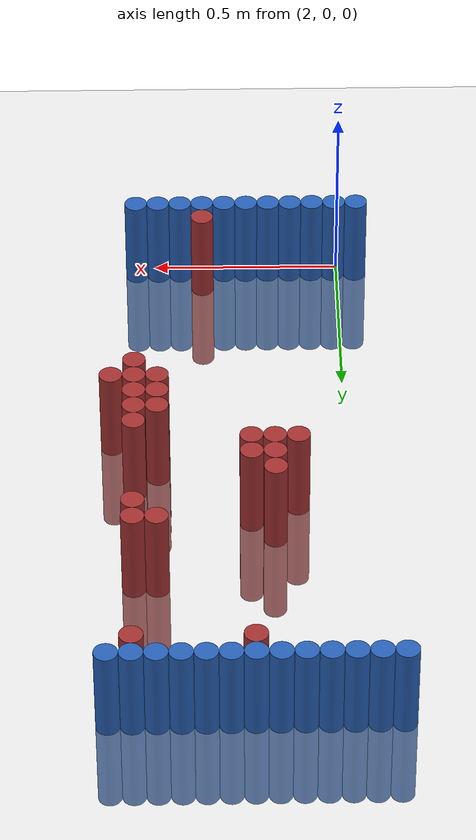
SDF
<sdf version="1.6">
 <world name="default">
  <model name="ground_plane">
   <static>1</static>
   <link name="link">
    <collision name="collision">
     <geometry><plane><normal>0 0 1</normal><size>100 100</size></plane></geometry>
     <surface><friction><ode><mu>100</mu><mu2>50</mu2></ode></friction></surface>
    </collision>
    <visual name="visual">
     <cast_shadows>0</cast_shadows>
     <geometry><plane><normal>0 0 1</normal><size>100 100</size></plane></geometry>
     <material>
      <script><uri>file://media/materials/scripts/gazebo.material</uri><name>Gazebo/Grey</name></script>
     </material>
    </visual>
   </link>
  </model>
  <model name="unit_cylinder_90">
   <static>1</static>
   <pose>1.890000 1.770000 0.000000 0.000000 0.000000 0.000000</pose>
   <link name="link">
    <inertial>
     <mass>1</mass>
     <inertia><ixx>0.145833</ixx><ixy>0</ixy><ixz>0</ixz><iyy>0.145833</iyy><iyz>0</iyz><izz>0.125</izz></inertia>
    </inertial>
    <collision name="collision">
     <geometry><cylinder><radius>0.030000</radius><length>0.5</length></cylinder></geometry>
    </collision>
    <visual name="visual">
     <geometry><cylinder><radius>0.030000</radius><length>0.5</length></cylinder></geometry>
     <material>
      <ambient>0.152000 0.379000 0.720000 1</ambient>
      <diffuse>0.152000 0.379000 0.720000 1</diffuse>
     </material>
     <material>
      <script><name>Gazebo/Grey</name><uri>file://media/materials/scripts/gazebo.material</uri></script>
     </material>
    </visual>
   </link>
  </model>
  <model name="unit_cylinder_91">
   <static>1</static>
   <pose>1.950000 0.030000 0.000000 0.000000 0.000000 0.000000</pose>
   <link name="link">
    <inertial>
     <mass>1</mass>
     <inertia><ixx>0.145833</ixx><ixy>0</ixy><ixz>0</ixz><iyy>0.145833</iyy><iyz>0</iyz><izz>0.125</izz></inertia>
    </inertial>
    <collision name="collision">
     <geometry><cylinder><radius>0.030000</radius><length>0.5</length></cylinder></geometry>
    </collision>
    <visual name="visual">
     <geometry><cylinder><radius>0.030000</radius><length>0.5</length></cylinder></geometry>
     <material>
      <ambient>0.152000 0.379000 0.720000 1</ambient>
      <diffuse>0.152000 0.379000 0.720000 1</diffuse>
     </material>
     <material>
      <script><name>Gazebo/Grey</name><uri>file://media/materials/scripts/gazebo.material</uri></script>
     </material>
    </visual>
   </link>
  </model>
  <model name="unit_cylinder_92">
   <static>1</static>
   <pose>1.950000 1.770000 0.000000 0.000000 0.000000 0.000000</pose>
   <link name="link">
    <inertial>
     <mass>1</mass>
     <inertia><ixx>0.145833</ixx><ixy>0</ixy><ixz>0</ixz><iyy>0.145833</iyy><iyz>0</iyz><izz>0.125</izz></inertia>
    </inertial>
    <collision name="collision">
     <geometry><cylinder><radius>0.030000</radius><length>0.5</length></cylinder></geometry>
    </collision>
    <visual name="visual">
     <geometry><cylinder><radius>0.030000</radius><length>0.5</length></cylinder></geometry>
     <material>
      <ambient>0.152000 0.379000 0.720000 1</ambient>
      <diffuse>0.152000 0.379000 0.720000 1</diffuse>
     </material>
     <material>
      <script><name>Gazebo/Grey</name><uri>file://media/materials/scripts/gazebo.material</uri></script>
     </material>
    </visual>
   </link>
  </model>
  <model name="unit_cylinder_93">
   <static>1</static>
   <pose>2.010000 0.030000 0.000000 0.000000 0.000000 0.000000</pose>
   <link name="link">
    <inertial>
     <mass>1</mass>
     <inertia><ixx>0.145833</ixx><ixy>0</ixy><ixz>0</ixz><iyy>0.145833</iyy><iyz>0</iyz><izz>0.125</izz></inertia>
    </inertial>
    <collision name="collision">
     <geometry><cylinder><radius>0.030000</radius><length>0.5</length></cylinder></geometry>
    </collision>
    <visual name="visual">
     <geometry><cylinder><radius>0.030000</radius><length>0.5</length></cylinder></geometry>
     <material>
      <ambient>0.152000 0.379000 0.720000 1</ambient>
      <diffuse>0.152000 0.379000 0.720000 1</diffuse>
     </material>
     <material>
      <script><name>Gazebo/Grey</name><uri>file://media/materials/scripts/gazebo.material</uri></script>
     </material>
    </visual>
   </link>
  </model>
  <model name="unit_cylinder_94">
   <static>1</static>
   <pose>2.010000 1.770000 0.000000 0.000000 0.000000 0.000000</pose>
   <link name="link">
    <inertial>
     <mass>1</mass>
     <inertia><ixx>0.145833</ixx><ixy>0</ixy><ixz>0</ixz><iyy>0.145833</iyy><iyz>0</iyz><izz>0.125</izz></inertia>
    </inertial>
    <collision name="collision">
     <geometry><cylinder><radius>0.030000</radius><length>0.5</length></cylinder></geometry>
    </collision>
    <visual name="visual">
     <geometry><cylinder><radius>0.030000</radius><length>0.5</length></cylinder></geometry>
     <material>
      <ambient>0.152000 0.379000 0.720000 1</ambient>
      <diffuse>0.152000 0.379000 0.720000 1</diffuse>
     </material>
     <material>
      <script><name>Gazebo/Grey</name><uri>file://media/materials/scripts/gazebo.material</uri></script>
     </material>
    </visual>
   </link>
  </model>
  <model name="unit_cylinder_95">
   <static>1</static>
   <pose>2.070000 1.770000 0.000000 0.000000 0.000000 0.000000</pose>
   <link name="link">
    <inertial>
     <mass>1</mass>
     <inertia><ixx>0.145833</ixx><ixy>0</ixy><ixz>0</ixz><iyy>0.145833</iyy><iyz>0</iyz><izz>0.125</izz></inertia>
    </inertial>
    <collision name="collision">
     <geometry><cylinder><radius>0.030000</radius><length>0.5</length></cylinder></geometry>
    </collision>
    <visual name="visual">
     <geometry><cylinder><radius>0.030000</radius><length>0.5</length></cylinder></geometry>
     <material>
      <ambient>0.152000 0.379000 0.720000 1</ambient>
      <diffuse>0.152000 0.379000 0.720000 1</diffuse>
     </material>
     <material>
      <script><name>Gazebo/Grey</name><uri>file://media/materials/scripts/gazebo.material</uri></script>
     </material>
    </visual>
   </link>
  </model>
  <model name="unit_cylinder_96">
   <static>1</static>
   <pose>2.130000 1.770000 0.000000 0.000000 0.000000 0.000000</pose>
   <link name="link">
    <inertial>
     <mass>1</mass>
     <inertia><ixx>0.145833</ixx><ixy>0</ixy><ixz>0</ixz><iyy>0.145833</iyy><iyz>0</iyz><izz>0.125</izz></inertia>
    </inertial>
    <collision name="collision">
     <geometry><cylinder><radius>0.030000</radius><length>0.5</length></cylinder></geometry>
    </collision>
    <visual name="visual">
     <geometry><cylinder><radius>0.030000</radius><length>0.5</length></cylinder></geometry>
     <material>
      <ambient>0.152000 0.379000 0.720000 1</ambient>
      <diffuse>0.152000 0.379000 0.720000 1</diffuse>
     </material>
     <material>
      <script><name>Gazebo/Grey</name><uri>file://media/materials/scripts/gazebo.material</uri></script>
     </material>
    </visual>
   </link>
  </model>
  <model name="unit_cylinder_97">
   <static>1</static>
   <pose>2.190000 1.770000 0.000000 0.000000 0.000000 0.000000</pose>
   <link name="link">
    <inertial>
     <mass>1</mass>
     <inertia><ixx>0.145833</ixx><ixy>0</ixy><ixz>0</ixz><iyy>0.145833</iyy><iyz>0</iyz><izz>0.125</izz></inertia>
    </inertial>
    <collision name="collision">
     <geometry><cylinder><radius>0.030000</radius><length>0.5</length></cylinder></geometry>
    </collision>
    <visual name="visual">
     <geometry><cylinder><radius>0.030000</radius><length>0.5</length></cylinder></geometry>
     <material>
      <ambient>0.152000 0.379000 0.720000 1</ambient>
      <diffuse>0.152000 0.379000 0.720000 1</diffuse>
     </material>
     <material>
      <script><name>Gazebo/Grey</name><uri>file://media/materials/scripts/gazebo.material</uri></script>
     </material>
    </visual>
   </link>
  </model>
  <model name="unit_cylinder_98">
   <static>1</static>
   <pose>2.250000 1.770000 0.000000 0.000000 0.000000 0.000000</pose>
   <link name="link">
    <inertial>
     <mass>1</mass>
     <inertia><ixx>0.145833</ixx><ixy>0</ixy><ixz>0</ixz><iyy>0.145833</iyy><iyz>0</iyz><izz>0.125</izz></inertia>
    </inertial>
    <collision name="collision">
     <geometry><cylinder><radius>0.030000</radius><length>0.5</length></cylinder></geometry>
    </collision>
    <visual name="visual">
     <geometry><cylinder><radius>0.030000</radius><length>0.5</length></cylinder></geometry>
     <material>
      <ambient>0.152000 0.379000 0.720000 1</ambient>
      <diffuse>0.152000 0.379000 0.720000 1</diffuse>
     </material>
     <material>
      <script><name>Gazebo/Grey</name><uri>file://media/materials/scripts/gazebo.material</uri></script>
     </material>
    </visual>
   </link>
  </model>
  <model name="unit_cylinder_99">
   <static>1</static>
   <pose>2.310000 1.770000 0.000000 0.000000 0.000000 0.000000</pose>
   <link name="link">
    <inertial>
     <mass>1</mass>
     <inertia><ixx>0.145833</ixx><ixy>0</ixy><ixz>0</ixz><iyy>0.145833</iyy><iyz>0</iyz><izz>0.125</izz></inertia>
    </inertial>
    <collision name="collision">
     <geometry><cylinder><radius>0.030000</radius><length>0.5</length></cylinder></geometry>
    </collision>
    <visual name="visual">
     <geometry><cylinder><radius>0.030000</radius><length>0.5</length></cylinder></geometry>
     <material>
      <ambient>0.152000 0.379000 0.720000 1</ambient>
      <diffuse>0.152000 0.379000 0.720000 1</diffuse>
     </material>
     <material>
      <script><name>Gazebo/Grey</name><uri>file://media/materials/scripts/gazebo.material</uri></script>
     </material>
    </visual>
   </link>
  </model>
  <model name="unit_cylinder_100">
   <static>1</static>
   <pose>2.370000 1.770000 0.000000 0.000000 0.000000 0.000000</pose>
   <link name="link">
    <inertial>
     <mass>1</mass>
     <inertia><ixx>0.145833</ixx><ixy>0</ixy><ixz>0</ixz><iyy>0.145833</iyy><iyz>0</iyz><izz>0.125</izz></inertia>
    </inertial>
    <collision name="collision">
     <geometry><cylinder><radius>0.030000</radius><length>0.5</length></cylinder></geometry>
    </collision>
    <visual name="visual">
     <geometry><cylinder><radius>0.030000</radius><length>0.5</length></cylinder></geometry>
     <material>
      <ambient>0.152000 0.379000 0.720000 1</ambient>
      <diffuse>0.152000 0.379000 0.720000 1</diffuse>
     </material>
     <material>
      <script><name>Gazebo/Grey</name><uri>file://media/materials/scripts/gazebo.material</uri></script>
     </material>
    </visual>
   </link>
  </model>
  <model name="unit_cylinder_101">
   <static>1</static>
   <pose>2.430000 1.770000 0.000000 0.000000 0.000000 0.000000</pose>
   <link name="link">
    <inertial>
     <mass>1</mass>
     <inertia><ixx>0.145833</ixx><ixy>0</ixy><ixz>0</ixz><iyy>0.145833</iyy><iyz>0</iyz><izz>0.125</izz></inertia>
    </inertial>
    <collision name="collision">
     <geometry><cylinder><radius>0.030000</radius><length>0.5</length></cylinder></geometry>
    </collision>
    <visual name="visual">
     <geometry><cylinder><radius>0.030000</radius><length>0.5</length></cylinder></geometry>
     <material>
      <ambient>0.152000 0.379000 0.720000 1</ambient>
      <diffuse>0.152000 0.379000 0.720000 1</diffuse>
     </material>
     <material>
      <script><name>Gazebo/Grey</name><uri>file://media/materials/scripts/gazebo.material</uri></script>
     </material>
    </visual>
   </link>
  </model>
  <model name="unit_cylinder_102">
   <static>1</static>
   <pose>2.490000 1.770000 0.000000 0.000000 0.000000 0.000000</pose>
   <link name="link">
    <inertial>
     <mass>1</mass>
     <inertia><ixx>0.145833</ixx><ixy>0</ixy><ixz>0</ixz><iyy>0.145833</iyy><iyz>0</iyz><izz>0.125</izz></inertia>
    </inertial>
    <collision name="collision">
     <geometry><cylinder><radius>0.030000</radius><length>0.5</length></cylinder></geometry>
    </collision>
    <visual name="visual">
     <geometry><cylinder><radius>0.030000</radius><length>0.5</length></cylinder></geometry>
     <material>
      <ambient>0.152000 0.379000 0.720000 1</ambient>
      <diffuse>0.152000 0.379000 0.720000 1</diffuse>
     </material>
     <material>
      <script><name>Gazebo/Grey</name><uri>file://media/materials/scripts/gazebo.material</uri></script>
     </material>
    </visual>
   </link>
  </model>
  <model name="unit_cylinder_103">
   <static>1</static>
   <pose>2.550000 1.770000 0.000000 0.000000 0.000000 0.000000</pose>
   <link name="link">
    <inertial>
     <mass>1</mass>
     <inertia><ixx>0.145833</ixx><ixy>0</ixy><ixz>0</ixz><iyy>0.145833</iyy><iyz>0</iyz><izz>0.125</izz></inertia>
    </inertial>
    <collision name="collision">
     <geometry><cylinder><radius>0.030000</radius><length>0.5</length></cylinder></geometry>
    </collision>
    <visual name="visual">
     <geometry><cylinder><radius>0.030000</radius><length>0.5</length></cylinder></geometry>
     <material>
      <ambient>0.152000 0.379000 0.720000 1</ambient>
      <diffuse>0.152000 0.379000 0.720000 1</diffuse>
     </material>
     <material>
      <script><name>Gazebo/Grey</name><uri>file://media/materials/scripts/gazebo.material</uri></script>
     </material>
    </visual>
   </link>
  </model>
  <model name="unit_cylinder_104">
   <static>1</static>
   <pose>2.610000 1.770000 0.000000 0.000000 0.000000 0.000000</pose>
   <link name="link">
    <inertial>
     <mass>1</mass>
     <inertia><ixx>0.145833</ixx><ixy>0</ixy><ixz>0</ixz><iyy>0.145833</iyy><iyz>0</iyz><izz>0.125</izz></inertia>
    </inertial>
    <collision name="collision">
     <geometry><cylinder><radius>0.030000</radius><length>0.5</length></cylinder></geometry>
    </collision>
    <visual name="visual">
     <geometry><cylinder><radius>0.030000</radius><length>0.5</length></cylinder></geometry>
     <material>
      <ambient>0.152000 0.379000 0.720000 1</ambient>
      <diffuse>0.152000 0.379000 0.720000 1</diffuse>
     </material>
     <material>
      <script><name>Gazebo/Grey</name><uri>file://media/materials/scripts/gazebo.material</uri></script>
     </material>
    </visual>
   </link>
  </model>
  <model name="unit_cylinder_125">
   <static>1</static>
   <pose>2.250000 1.710000 0.000000 0.000000 0.000000 0.000000</pose>
   <link name="link">
    <inertial>
     <mass>1</mass>
     <inertia><ixx>0.145833</ixx><ixy>0</ixy><ixz>0</ixz><iyy>0.145833</iyy><iyz>0</iyz><izz>0.125</izz></inertia>
    </inertial>
    <collision name="collision">
     <geometry><cylinder><radius>0.030000</radius><length>0.5</length></cylinder></geometry>
    </collision>
    <visual name="visual">
     <geometry><cylinder><radius>0.030000</radius><length>0.5</length></cylinder></geometry>
     <material>
      <ambient>0.648000 0.192000 0.192000 1</ambient>
      <diffuse>0.648000 0.192000 0.192000 1</diffuse>
     </material>
     <material>
      <script><name>Gazebo/Grey</name><uri>file://media/materials/scripts/gazebo.material</uri></script>
     </material>
    </visual>
   </link>
  </model>
  <model name="unit_cylinder_126">
   <static>1</static>
   <pose>2.550000 1.710000 0.000000 0.000000 0.000000 0.000000</pose>
   <link name="link">
    <inertial>
     <mass>1</mass>
     <inertia><ixx>0.145833</ixx><ixy>0</ixy><ixz>0</ixz><iyy>0.145833</iyy><iyz>0</iyz><izz>0.125</izz></inertia>
    </inertial>
    <collision name="collision">
     <geometry><cylinder><radius>0.030000</radius><length>0.5</length></cylinder></geometry>
    </collision>
    <visual name="visual">
     <geometry><cylinder><radius>0.030000</radius><length>0.5</length></cylinder></geometry>
     <material>
      <ambient>0.648000 0.192000 0.192000 1</ambient>
      <diffuse>0.648000 0.192000 0.192000 1</diffuse>
     </material>
     <material>
      <script><name>Gazebo/Grey</name><uri>file://media/materials/scripts/gazebo.material</uri></script>
     </material>
    </visual>
   </link>
  </model>
  <model name="unit_cylinder_141">
   <static>1</static>
   <pose>2.490000 1.290000 0.000000 0.000000 0.000000 0.000000</pose>
   <link name="link">
    <inertial>
     <mass>1</mass>
     <inertia><ixx>0.145833</ixx><ixy>0</ixy><ixz>0</ixz><iyy>0.145833</iyy><iyz>0</iyz><izz>0.125</izz></inertia>
    </inertial>
    <collision name="collision">
     <geometry><cylinder><radius>0.030000</radius><length>0.5</length></cylinder></geometry>
    </collision>
    <visual name="visual">
     <geometry><cylinder><radius>0.030000</radius><length>0.5</length></cylinder></geometry>
     <material>
      <ambient>0.648000 0.192000 0.192000 1</ambient>
      <diffuse>0.648000 0.192000 0.192000 1</diffuse>
     </material>
     <material>
      <script><name>Gazebo/Grey</name><uri>file://media/materials/scripts/gazebo.material</uri></script>
     </material>
    </visual>
   </link>
  </model>
  <model name="unit_cylinder_142">
   <static>1</static>
   <pose>2.550000 1.290000 0.000000 0.000000 0.000000 0.000000</pose>
   <link name="link">
    <inertial>
     <mass>1</mass>
     <inertia><ixx>0.145833</ixx><ixy>0</ixy><ixz>0</ixz><iyy>0.145833</iyy><iyz>0</iyz><izz>0.125</izz></inertia>
    </inertial>
    <collision name="collision">
     <geometry><cylinder><radius>0.030000</radius><length>0.5</length></cylinder></geometry>
    </collision>
    <visual name="visual">
     <geometry><cylinder><radius>0.030000</radius><length>0.5</length></cylinder></geometry>
     <material>
      <ambient>0.648000 0.192000 0.192000 1</ambient>
      <diffuse>0.648000 0.192000 0.192000 1</diffuse>
     </material>
     <material>
      <script><name>Gazebo/Grey</name><uri>file://media/materials/scripts/gazebo.material</uri></script>
     </material>
    </visual>
   </link>
  </model>
  <model name="unit_cylinder_145">
   <static>1</static>
   <pose>2.550000 1.230000 0.000000 0.000000 0.000000 0.000000</pose>
   <link name="link">
    <inertial>
     <mass>1</mass>
     <inertia><ixx>0.145833</ixx><ixy>0</ixy><ixz>0</ixz><iyy>0.145833</iyy><iyz>0</iyz><izz>0.125</izz></inertia>
    </inertial>
    <collision name="collision">
     <geometry><cylinder><radius>0.030000</radius><length>0.5</length></cylinder></geometry>
    </collision>
    <visual name="visual">
     <geometry><cylinder><radius>0.030000</radius><length>0.5</length></cylinder></geometry>
     <material>
      <ambient>0.648000 0.192000 0.192000 1</ambient>
      <diffuse>0.648000 0.192000 0.192000 1</diffuse>
     </material>
     <material>
      <script><name>Gazebo/Grey</name><uri>file://media/materials/scripts/gazebo.material</uri></script>
     </material>
    </visual>
   </link>
  </model>
  <model name="unit_cylinder_151">
   <static>1</static>
   <pose>2.190000 1.110000 0.000000 0.000000 0.000000 0.000000</pose>
   <link name="link">
    <inertial>
     <mass>1</mass>
     <inertia><ixx>0.145833</ixx><ixy>0</ixy><ixz>0</ixz><iyy>0.145833</iyy><iyz>0</iyz><izz>0.125</izz></inertia>
    </inertial>
    <collision name="collision">
     <geometry><cylinder><radius>0.030000</radius><length>0.5</length></cylinder></geometry>
    </collision>
    <visual name="visual">
     <geometry><cylinder><radius>0.030000</radius><length>0.5</length></cylinder></geometry>
     <material>
      <ambient>0.648000 0.192000 0.192000 1</ambient>
      <diffuse>0.648000 0.192000 0.192000 1</diffuse>
     </material>
     <material>
      <script><name>Gazebo/Grey</name><uri>file://media/materials/scripts/gazebo.material</uri></script>
     </material>
    </visual>
   </link>
  </model>
  <model name="unit_cylinder_154">
   <static>1</static>
   <pose>2.190000 1.050000 0.000000 0.000000 0.000000 0.000000</pose>
   <link name="link">
    <inertial>
     <mass>1</mass>
     <inertia><ixx>0.145833</ixx><ixy>0</ixy><ixz>0</ixz><iyy>0.145833</iyy><iyz>0</iyz><izz>0.125</izz></inertia>
    </inertial>
    <collision name="collision">
     <geometry><cylinder><radius>0.030000</radius><length>0.5</length></cylinder></geometry>
    </collision>
    <visual name="visual">
     <geometry><cylinder><radius>0.030000</radius><length>0.5</length></cylinder></geometry>
     <material>
      <ambient>0.648000 0.192000 0.192000 1</ambient>
      <diffuse>0.648000 0.192000 0.192000 1</diffuse>
     </material>
     <material>
      <script><name>Gazebo/Grey</name><uri>file://media/materials/scripts/gazebo.material</uri></script>
     </material>
    </visual>
   </link>
  </model>
  <model name="unit_cylinder_155">
   <static>1</static>
   <pose>2.250000 1.050000 0.000000 0.000000 0.000000 0.000000</pose>
   <link name="link">
    <inertial>
     <mass>1</mass>
     <inertia><ixx>0.145833</ixx><ixy>0</ixy><ixz>0</ixz><iyy>0.145833</iyy><iyz>0</iyz><izz>0.125</izz></inertia>
    </inertial>
    <collision name="collision">
     <geometry><cylinder><radius>0.030000</radius><length>0.5</length></cylinder></geometry>
    </collision>
    <visual name="visual">
     <geometry><cylinder><radius>0.030000</radius><length>0.5</length></cylinder></geometry>
     <material>
      <ambient>0.648000 0.192000 0.192000 1</ambient>
      <diffuse>0.648000 0.192000 0.192000 1</diffuse>
     </material>
     <material>
      <script><name>Gazebo/Grey</name><uri>file://media/materials/scripts/gazebo.material</uri></script>
     </material>
    </visual>
   </link>
  </model>
  <model name="unit_cylinder_156">
   <static>1</static>
   <pose>2.130000 0.990000 0.000000 0.000000 0.000000 0.000000</pose>
   <link name="link">
    <inertial>
     <mass>1</mass>
     <inertia><ixx>0.145833</ixx><ixy>0</ixy><ixz>0</ixz><iyy>0.145833</iyy><iyz>0</iyz><izz>0.125</izz></inertia>
    </inertial>
    <collision name="collision">
     <geometry><cylinder><radius>0.030000</radius><length>0.5</length></cylinder></geometry>
    </collision>
    <visual name="visual">
     <geometry><cylinder><radius>0.030000</radius><length>0.5</length></cylinder></geometry>
     <material>
      <ambient>0.648000 0.192000 0.192000 1</ambient>
      <diffuse>0.648000 0.192000 0.192000 1</diffuse>
     </material>
     <material>
      <script><name>Gazebo/Grey</name><uri>file://media/materials/scripts/gazebo.material</uri></script>
     </material>
    </visual>
   </link>
  </model>
  <model name="unit_cylinder_157">
   <static>1</static>
   <pose>2.190000 0.990000 0.000000 0.000000 0.000000 0.000000</pose>
   <link name="link">
    <inertial>
     <mass>1</mass>
     <inertia><ixx>0.145833</ixx><ixy>0</ixy><ixz>0</ixz><iyy>0.145833</iyy><iyz>0</iyz><izz>0.125</izz></inertia>
    </inertial>
    <collision name="collision">
     <geometry><cylinder><radius>0.030000</radius><length>0.5</length></cylinder></geometry>
    </collision>
    <visual name="visual">
     <geometry><cylinder><radius>0.030000</radius><length>0.5</length></cylinder></geometry>
     <material>
      <ambient>0.648000 0.192000 0.192000 1</ambient>
      <diffuse>0.648000 0.192000 0.192000 1</diffuse>
     </material>
     <material>
      <script><name>Gazebo/Grey</name><uri>file://media/materials/scripts/gazebo.material</uri></script>
     </material>
    </visual>
   </link>
  </model>
  <model name="unit_cylinder_158">
   <static>1</static>
   <pose>2.250000 0.990000 0.000000 0.000000 0.000000 0.000000</pose>
   <link name="link">
    <inertial>
     <mass>1</mass>
     <inertia><ixx>0.145833</ixx><ixy>0</ixy><ixz>0</ixz><iyy>0.145833</iyy><iyz>0</iyz><izz>0.125</izz></inertia>
    </inertial>
    <collision name="collision">
     <geometry><cylinder><radius>0.030000</radius><length>0.5</length></cylinder></geometry>
    </collision>
    <visual name="visual">
     <geometry><cylinder><radius>0.030000</radius><length>0.5</length></cylinder></geometry>
     <material>
      <ambient>0.648000 0.192000 0.192000 1</ambient>
      <diffuse>0.648000 0.192000 0.192000 1</diffuse>
     </material>
     <material>
      <script><name>Gazebo/Grey</name><uri>file://media/materials/scripts/gazebo.material</uri></script>
     </material>
    </visual>
   </link>
  </model>
  <model name="unit_cylinder_159">
   <static>1</static>
   <pose>2.550000 0.930000 0.000000 0.000000 0.000000 0.000000</pose>
   <link name="link">
    <inertial>
     <mass>1</mass>
     <inertia><ixx>0.145833</ixx><ixy>0</ixy><ixz>0</ixz><iyy>0.145833</iyy><iyz>0</iyz><izz>0.125</izz></inertia>
    </inertial>
    <collision name="collision">
     <geometry><cylinder><radius>0.030000</radius><length>0.5</length></cylinder></geometry>
    </collision>
    <visual name="visual">
     <geometry><cylinder><radius>0.030000</radius><length>0.5</length></cylinder></geometry>
     <material>
      <ambient>0.648000 0.192000 0.192000 1</ambient>
      <diffuse>0.648000 0.192000 0.192000 1</diffuse>
     </material>
     <material>
      <script><name>Gazebo/Grey</name><uri>file://media/materials/scripts/gazebo.material</uri></script>
     </material>
    </visual>
   </link>
  </model>
  <model name="unit_cylinder_160">
   <static>1</static>
   <pose>2.490000 0.870000 0.000000 0.000000 0.000000 0.000000</pose>
   <link name="link">
    <inertial>
     <mass>1</mass>
     <inertia><ixx>0.145833</ixx><ixy>0</ixy><ixz>0</ixz><iyy>0.145833</iyy><iyz>0</iyz><izz>0.125</izz></inertia>
    </inertial>
    <collision name="collision">
     <geometry><cylinder><radius>0.030000</radius><length>0.5</length></cylinder></geometry>
    </collision>
    <visual name="visual">
     <geometry><cylinder><radius>0.030000</radius><length>0.5</length></cylinder></geometry>
     <material>
      <ambient>0.648000 0.192000 0.192000 1</ambient>
      <diffuse>0.648000 0.192000 0.192000 1</diffuse>
     </material>
     <material>
      <script><name>Gazebo/Grey</name><uri>file://media/materials/scripts/gazebo.material</uri></script>
     </material>
    </visual>
   </link>
  </model>
  <model name="unit_cylinder_161">
   <static>1</static>
   <pose>2.550000 0.870000 0.000000 0.000000 0.000000 0.000000</pose>
   <link name="link">
    <inertial>
     <mass>1</mass>
     <inertia><ixx>0.145833</ixx><ixy>0</ixy><ixz>0</ixz><iyy>0.145833</iyy><iyz>0</iyz><izz>0.125</izz></inertia>
    </inertial>
    <collision name="collision">
     <geometry><cylinder><radius>0.030000</radius><length>0.5</length></cylinder></geometry>
    </collision>
    <visual name="visual">
     <geometry><cylinder><radius>0.030000</radius><length>0.5</length></cylinder></geometry>
     <material>
      <ambient>0.648000 0.192000 0.192000 1</ambient>
      <diffuse>0.648000 0.192000 0.192000 1</diffuse>
     </material>
     <material>
      <script><name>Gazebo/Grey</name><uri>file://media/materials/scripts/gazebo.material</uri></script>
     </material>
    </visual>
   </link>
  </model>
  <model name="unit_cylinder_162">
   <static>1</static>
   <pose>2.490000 0.810000 0.000000 0.000000 0.000000 0.000000</pose>
   <link name="link">
    <inertial>
     <mass>1</mass>
     <inertia><ixx>0.145833</ixx><ixy>0</ixy><ixz>0</ixz><iyy>0.145833</iyy><iyz>0</iyz><izz>0.125</izz></inertia>
    </inertial>
    <collision name="collision">
     <geometry><cylinder><radius>0.030000</radius><length>0.5</length></cylinder></geometry>
    </collision>
    <visual name="visual">
     <geometry><cylinder><radius>0.030000</radius><length>0.5</length></cylinder></geometry>
     <material>
      <ambient>0.648000 0.192000 0.192000 1</ambient>
      <diffuse>0.648000 0.192000 0.192000 1</diffuse>
     </material>
     <material>
      <script><name>Gazebo/Grey</name><uri>file://media/materials/scripts/gazebo.material</uri></script>
     </material>
    </visual>
   </link>
  </model>
  <model name="unit_cylinder_163">
   <static>1</static>
   <pose>2.550000 0.810000 0.000000 0.000000 0.000000 0.000000</pose>
   <link name="link">
    <inertial>
     <mass>1</mass>
     <inertia><ixx>0.145833</ixx><ixy>0</ixy><ixz>0</ixz><iyy>0.145833</iyy><iyz>0</iyz><izz>0.125</izz></inertia>
    </inertial>
    <collision name="collision">
     <geometry><cylinder><radius>0.030000</radius><length>0.5</length></cylinder></geometry>
    </collision>
    <visual name="visual">
     <geometry><cylinder><radius>0.030000</radius><length>0.5</length></cylinder></geometry>
     <material>
      <ambient>0.648000 0.192000 0.192000 1</ambient>
      <diffuse>0.648000 0.192000 0.192000 1</diffuse>
     </material>
     <material>
      <script><name>Gazebo/Grey</name><uri>file://media/materials/scripts/gazebo.material</uri></script>
     </material>
    </visual>
   </link>
  </model>
  <model name="unit_cylinder_168">
   <static>1</static>
   <pose>2.490000 0.750000 0.000000 0.000000 0.000000 0.000000</pose>
   <link name="link">
    <inertial>
     <mass>1</mass>
     <inertia><ixx>0.145833</ixx><ixy>0</ixy><ixz>0</ixz><iyy>0.145833</iyy><iyz>0</iyz><izz>0.125</izz></inertia>
    </inertial>
    <collision name="collision">
     <geometry><cylinder><radius>0.030000</radius><length>0.5</length></cylinder></geometry>
    </collision>
    <visual name="visual">
     <geometry><cylinder><radius>0.030000</radius><length>0.5</length></cylinder></geometry>
     <material>
      <ambient>0.648000 0.192000 0.192000 1</ambient>
      <diffuse>0.648000 0.192000 0.192000 1</diffuse>
     </material>
     <material>
      <script><name>Gazebo/Grey</name><uri>file://media/materials/scripts/gazebo.material</uri></script>
     </material>
    </visual>
   </link>
  </model>
  <model name="unit_cylinder_169">
   <static>1</static>
   <pose>2.550000 0.750000 0.000000 0.000000 0.000000 0.000000</pose>
   <link name="link">
    <inertial>
     <mass>1</mass>
     <inertia><ixx>0.145833</ixx><ixy>0</ixy><ixz>0</ixz><iyy>0.145833</iyy><iyz>0</iyz><izz>0.125</izz></inertia>
    </inertial>
    <collision name="collision">
     <geometry><cylinder><radius>0.030000</radius><length>0.5</length></cylinder></geometry>
    </collision>
    <visual name="visual">
     <geometry><cylinder><radius>0.030000</radius><length>0.5</length></cylinder></geometry>
     <material>
      <ambient>0.648000 0.192000 0.192000 1</ambient>
      <diffuse>0.648000 0.192000 0.192000 1</diffuse>
     </material>
     <material>
      <script><name>Gazebo/Grey</name><uri>file://media/materials/scripts/gazebo.material</uri></script>
     </material>
    </visual>
   </link>
  </model>
  <model name="unit_cylinder_170">
   <static>1</static>
   <pose>2.610000 0.750000 0.000000 0.000000 0.000000 0.000000</pose>
   <link name="link">
    <inertial>
     <mass>1</mass>
     <inertia><ixx>0.145833</ixx><ixy>0</ixy><ixz>0</ixz><iyy>0.145833</iyy><iyz>0</iyz><izz>0.125</izz></inertia>
    </inertial>
    <collision name="collision">
     <geometry><cylinder><radius>0.030000</radius><length>0.5</length></cylinder></geometry>
    </collision>
    <visual name="visual">
     <geometry><cylinder><radius>0.030000</radius><length>0.5</length></cylinder></geometry>
     <material>
      <ambient>0.648000 0.192000 0.192000 1</ambient>
      <diffuse>0.648000 0.192000 0.192000 1</diffuse>
     </material>
     <material>
      <script><name>Gazebo/Grey</name><uri>file://media/materials/scripts/gazebo.material</uri></script>
     </material>
    </visual>
   </link>
  </model>
  <model name="unit_cylinder_176">
   <static>1</static>
   <pose>2.550000 0.690000 0.000000 0.000000 0.000000 0.000000</pose>
   <link name="link">
    <inertial>
     <mass>1</mass>
     <inertia><ixx>0.145833</ixx><ixy>0</ixy><ixz>0</ixz><iyy>0.145833</iyy><iyz>0</iyz><izz>0.125</izz></inertia>
    </inertial>
    <collision name="collision">
     <geometry><cylinder><radius>0.030000</radius><length>0.5</length></cylinder></geometry>
    </collision>
    <visual name="visual">
     <geometry><cylinder><radius>0.030000</radius><length>0.5</length></cylinder></geometry>
     <material>
      <ambient>0.648000 0.192000 0.192000 1</ambient>
      <diffuse>0.648000 0.192000 0.192000 1</diffuse>
     </material>
     <material>
      <script><name>Gazebo/Grey</name><uri>file://media/materials/scripts/gazebo.material</uri></script>
     </material>
    </visual>
   </link>
  </model>
  <model name="unit_cylinder_185">
   <static>1</static>
   <pose>2.370000 0.090000 0.000000 0.000000 0.000000 0.000000</pose>
   <link name="link">
    <inertial>
     <mass>1</mass>
     <inertia><ixx>0.145833</ixx><ixy>0</ixy><ixz>0</ixz><iyy>0.145833</iyy><iyz>0</iyz><izz>0.125</izz></inertia>
    </inertial>
    <collision name="collision">
     <geometry><cylinder><radius>0.030000</radius><length>0.5</length></cylinder></geometry>
    </collision>
    <visual name="visual">
     <geometry><cylinder><radius>0.030000</radius><length>0.5</length></cylinder></geometry>
     <material>
      <ambient>0.648000 0.192000 0.192000 1</ambient>
      <diffuse>0.648000 0.192000 0.192000 1</diffuse>
     </material>
     <material>
      <script><name>Gazebo/Grey</name><uri>file://media/materials/scripts/gazebo.material</uri></script>
     </material>
    </visual>
   </link>
  </model>
  <model name="unit_cylinder_196">
   <static>1</static>
   <pose>2.070000 0.030000 0.000000 0.000000 0.000000 0.000000</pose>
   <link name="link">
    <inertial>
     <mass>1</mass>
     <inertia><ixx>0.145833</ixx><ixy>0</ixy><ixz>0</ixz><iyy>0.145833</iyy><iyz>0</iyz><izz>0.125</izz></inertia>
    </inertial>
    <collision name="collision">
     <geometry><cylinder><radius>0.030000</radius><length>0.5</length></cylinder></geometry>
    </collision>
    <visual name="visual">
     <geometry><cylinder><radius>0.030000</radius><length>0.5</length></cylinder></geometry>
     <material>
      <ambient>0.152000 0.379000 0.720000 1</ambient>
      <diffuse>0.152000 0.379000 0.720000 1</diffuse>
     </material>
     <material>
      <script><name>Gazebo/Grey</name><uri>file://media/materials/scripts/gazebo.material</uri></script>
     </material>
    </visual>
   </link>
  </model>
  <model name="unit_cylinder_197">
   <static>1</static>
   <pose>2.130000 0.030000 0.000000 0.000000 0.000000 0.000000</pose>
   <link name="link">
    <inertial>
     <mass>1</mass>
     <inertia><ixx>0.145833</ixx><ixy>0</ixy><ixz>0</ixz><iyy>0.145833</iyy><iyz>0</iyz><izz>0.125</izz></inertia>
    </inertial>
    <collision name="collision">
     <geometry><cylinder><radius>0.030000</radius><length>0.5</length></cylinder></geometry>
    </collision>
    <visual name="visual">
     <geometry><cylinder><radius>0.030000</radius><length>0.5</length></cylinder></geometry>
     <material>
      <ambient>0.152000 0.379000 0.720000 1</ambient>
      <diffuse>0.152000 0.379000 0.720000 1</diffuse>
     </material>
     <material>
      <script><name>Gazebo/Grey</name><uri>file://media/materials/scripts/gazebo.material</uri></script>
     </material>
    </visual>
   </link>
  </model>
  <model name="unit_cylinder_198">
   <static>1</static>
   <pose>2.190000 0.030000 0.000000 0.000000 0.000000 0.000000</pose>
   <link name="link">
    <inertial>
     <mass>1</mass>
     <inertia><ixx>0.145833</ixx><ixy>0</ixy><ixz>0</ixz><iyy>0.145833</iyy><iyz>0</iyz><izz>0.125</izz></inertia>
    </inertial>
    <collision name="collision">
     <geometry><cylinder><radius>0.030000</radius><length>0.5</length></cylinder></geometry>
    </collision>
    <visual name="visual">
     <geometry><cylinder><radius>0.030000</radius><length>0.5</length></cylinder></geometry>
     <material>
      <ambient>0.152000 0.379000 0.720000 1</ambient>
      <diffuse>0.152000 0.379000 0.720000 1</diffuse>
     </material>
     <material>
      <script><name>Gazebo/Grey</name><uri>file://media/materials/scripts/gazebo.material</uri></script>
     </material>
    </visual>
   </link>
  </model>
  <model name="unit_cylinder_199">
   <static>1</static>
   <pose>2.250000 0.030000 0.000000 0.000000 0.000000 0.000000</pose>
   <link name="link">
    <inertial>
     <mass>1</mass>
     <inertia><ixx>0.145833</ixx><ixy>0</ixy><ixz>0</ixz><iyy>0.145833</iyy><iyz>0</iyz><izz>0.125</izz></inertia>
    </inertial>
    <collision name="collision">
     <geometry><cylinder><radius>0.030000</radius><length>0.5</length></cylinder></geometry>
    </collision>
    <visual name="visual">
     <geometry><cylinder><radius>0.030000</radius><length>0.5</length></cylinder></geometry>
     <material>
      <ambient>0.152000 0.379000 0.720000 1</ambient>
      <diffuse>0.152000 0.379000 0.720000 1</diffuse>
     </material>
     <material>
      <script><name>Gazebo/Grey</name><uri>file://media/materials/scripts/gazebo.material</uri></script>
     </material>
    </visual>
   </link>
  </model>
  <model name="unit_cylinder_200">
   <static>1</static>
   <pose>2.310000 0.030000 0.000000 0.000000 0.000000 0.000000</pose>
   <link name="link">
    <inertial>
     <mass>1</mass>
     <inertia><ixx>0.145833</ixx><ixy>0</ixy><ixz>0</ixz><iyy>0.145833</iyy><iyz>0</iyz><izz>0.125</izz></inertia>
    </inertial>
    <collision name="collision">
     <geometry><cylinder><radius>0.030000</radius><length>0.5</length></cylinder></geometry>
    </collision>
    <visual name="visual">
     <geometry><cylinder><radius>0.030000</radius><length>0.5</length></cylinder></geometry>
     <material>
      <ambient>0.152000 0.379000 0.720000 1</ambient>
      <diffuse>0.152000 0.379000 0.720000 1</diffuse>
     </material>
     <material>
      <script><name>Gazebo/Grey</name><uri>file://media/materials/scripts/gazebo.material</uri></script>
     </material>
    </visual>
   </link>
  </model>
  <model name="unit_cylinder_201">
   <static>1</static>
   <pose>2.370000 0.030000 0.000000 0.000000 0.000000 0.000000</pose>
   <link name="link">
    <inertial>
     <mass>1</mass>
     <inertia><ixx>0.145833</ixx><ixy>0</ixy><ixz>0</ixz><iyy>0.145833</iyy><iyz>0</iyz><izz>0.125</izz></inertia>
    </inertial>
    <collision name="collision">
     <geometry><cylinder><radius>0.030000</radius><length>0.5</length></cylinder></geometry>
    </collision>
    <visual name="visual">
     <geometry><cylinder><radius>0.030000</radius><length>0.5</length></cylinder></geometry>
     <material>
      <ambient>0.152000 0.379000 0.720000 1</ambient>
      <diffuse>0.152000 0.379000 0.720000 1</diffuse>
     </material>
     <material>
      <script><name>Gazebo/Grey</name><uri>file://media/materials/scripts/gazebo.material</uri></script>
     </material>
    </visual>
   </link>
  </model>
  <model name="unit_cylinder_202">
   <static>1</static>
   <pose>2.430000 0.030000 0.000000 0.000000 0.000000 0.000000</pose>
   <link name="link">
    <inertial>
     <mass>1</mass>
     <inertia><ixx>0.145833</ixx><ixy>0</ixy><ixz>0</ixz><iyy>0.145833</iyy><iyz>0</iyz><izz>0.125</izz></inertia>
    </inertial>
    <collision name="collision">
     <geometry><cylinder><radius>0.030000</radius><length>0.5</length></cylinder></geometry>
    </collision>
    <visual name="visual">
     <geometry><cylinder><radius>0.030000</radius><length>0.5</length></cylinder></geometry>
     <material>
      <ambient>0.152000 0.379000 0.720000 1</ambient>
      <diffuse>0.152000 0.379000 0.720000 1</diffuse>
     </material>
     <material>
      <script><name>Gazebo/Grey</name><uri>file://media/materials/scripts/gazebo.material</uri></script>
     </material>
    </visual>
   </link>
  </model>
  <model name="unit_cylinder_203">
   <static>1</static>
   <pose>2.490000 0.030000 0.000000 0.000000 0.000000 0.000000</pose>
   <link name="link">
    <inertial>
     <mass>1</mass>
     <inertia><ixx>0.145833</ixx><ixy>0</ixy><ixz>0</ixz><iyy>0.145833</iyy><iyz>0</iyz><izz>0.125</izz></inertia>
    </inertial>
    <collision name="collision">
     <geometry><cylinder><radius>0.030000</radius><length>0.5</length></cylinder></geometry>
    </collision>
    <visual name="visual">
     <geometry><cylinder><radius>0.030000</radius><length>0.5</length></cylinder></geometry>
     <material>
      <ambient>0.152000 0.379000 0.720000 1</ambient>
      <diffuse>0.152000 0.379000 0.720000 1</diffuse>
     </material>
     <material>
      <script><name>Gazebo/Grey</name><uri>file://media/materials/scripts/gazebo.material</uri></script>
     </material>
    </visual>
   </link>
  </model>
  <model name="unit_cylinder_204">
   <static>1</static>
   <pose>2.550000 0.030000 0.000000 0.000000 0.000000 0.000000</pose>
   <link name="link">
    <inertial>
     <mass>1</mass>
     <inertia><ixx>0.145833</ixx><ixy>0</ixy><ixz>0</ixz><iyy>0.145833</iyy><iyz>0</iyz><izz>0.125</izz></inertia>
    </inertial>
    <collision name="collision">
     <geometry><cylinder><radius>0.030000</radius><length>0.5</length></cylinder></geometry>
    </collision>
    <visual name="visual">
     <geometry><cylinder><radius>0.030000</radius><length>0.5</length></cylinder></geometry>
     <material>
      <ambient>0.152000 0.379000 0.720000 1</ambient>
      <diffuse>0.152000 0.379000 0.720000 1</diffuse>
     </material>
     <material>
      <script><name>Gazebo/Grey</name><uri>file://media/materials/scripts/gazebo.material</uri></script>
     </material>
    </visual>
   </link>
  </model>
 </world>
</sdf>
